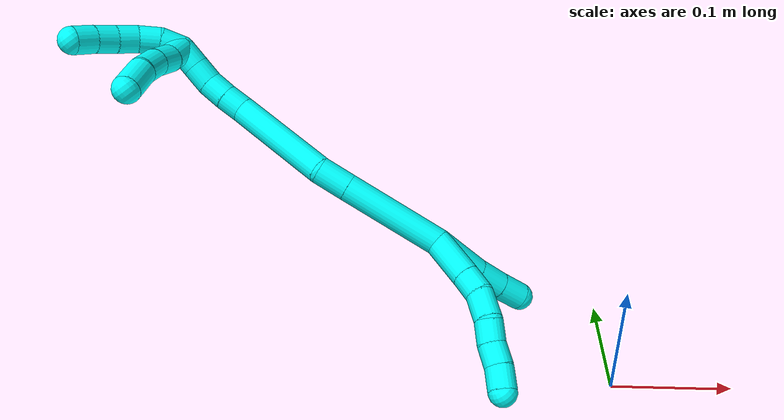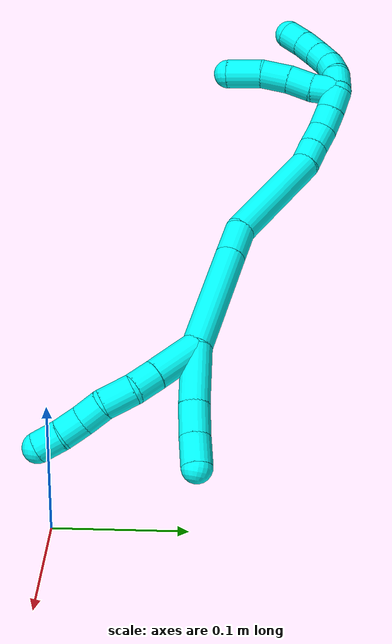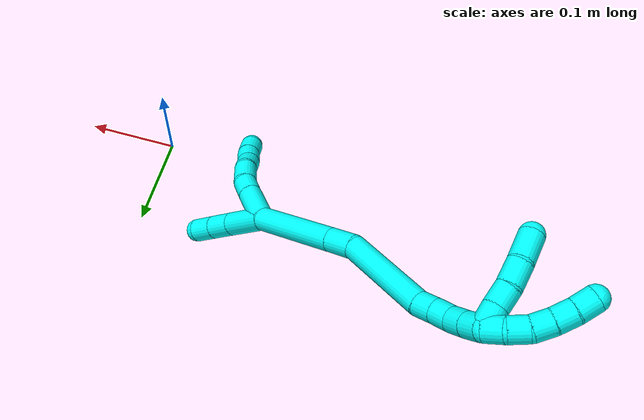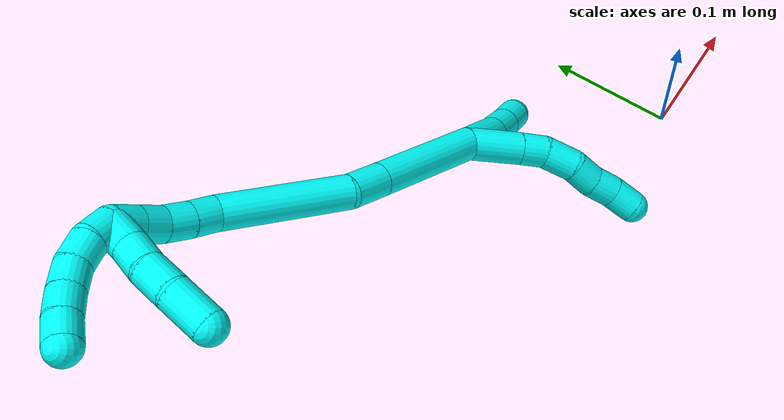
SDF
<sdf version="1.7">
 <world name="default">
  <model name="3">
   <static>0</static>
   <link name="3">
    <collision name="collision-cylinder-e_1_2_8">
     <pose>0.011711 -0.008985 -0.014736 2.59405 0.596169 1.66058</pose>
     <geometry><cylinder><radius>0.0125</radius><length>0.041714</length></cylinder></geometry>
     <surface>
      <friction><ode><mu>1.16</mu><mu2>1.16</mu2><slip1>0</slip1><slip2>0</slip2></ode></friction>
      <contact><ode><kp>1e+06</kp><kd>1</kd><max_vel>0</max_vel><min_depth>0.001</min_depth></ode></contact>
     </surface>
    </collision>
    <visual name="visual-cylinder-e_1_2_8">
     <pose>0.011711 -0.008985 -0.014736 2.59405 0.596169 1.66058</pose>
     <geometry><cylinder><radius>0.0125</radius><length>0.041714</length></cylinder></geometry>
     <material><ambient>0.003922 1 0.996078 1</ambient></material>
    </visual>
    <collision name="collision-cylinder-e_2_8_9">
     <pose>0.029112 -0.02276 -0.036716 2.55734 0.580047 1.56315</pose>
     <geometry><cylinder><radius>0.0125</radius><length>0.020766</length></cylinder></geometry>
     <surface>
      <friction><ode><mu>1.16</mu><mu2>1.16</mu2><slip1>0</slip1><slip2>0</slip2></ode></friction>
      <contact><ode><kp>1e+06</kp><kd>1</kd><max_vel>0</max_vel><min_depth>0.001</min_depth></ode></contact>
     </surface>
    </collision>
    <visual name="visual-cylinder-e_2_8_9">
     <pose>0.029112 -0.02276 -0.036716 2.55734 0.580047 1.56315</pose>
     <geometry><cylinder><radius>0.0125</radius><length>0.020766</length></cylinder></geometry>
     <material><ambient>0.003922 1 0.996078 1</ambient></material>
    </visual>
    <collision name="collision-cylinder-e_3_9_10">
     <pose>0.039591 -0.036652 -0.051874 2.28651 0.377941 0.794812</pose>
     <geometry><cylinder><radius>0.0125</radius><length>0.025954</length></cylinder></geometry>
     <surface>
      <friction><ode><mu>1.16</mu><mu2>1.16</mu2><slip1>0</slip1><slip2>0</slip2></ode></friction>
      <contact><ode><kp>1e+06</kp><kd>1</kd><max_vel>0</max_vel><min_depth>0.001</min_depth></ode></contact>
     </surface>
    </collision>
    <visual name="visual-cylinder-e_3_9_10">
     <pose>0.039591 -0.036652 -0.051874 2.28651 0.377941 0.794812</pose>
     <geometry><cylinder><radius>0.0125</radius><length>0.025954</length></cylinder></geometry>
     <material><ambient>0.003922 1 0.996078 1</ambient></material>
    </visual>
    <collision name="collision-cylinder-e_4_10_11">
     <pose>0.045266 -0.05301 -0.066868 2.34383 0.087246 0.206396</pose>
     <geometry><cylinder><radius>0.0125</radius><length>0.020354</length></cylinder></geometry>
     <surface>
      <friction><ode><mu>1.16</mu><mu2>1.16</mu2><slip1>0</slip1><slip2>0</slip2></ode></friction>
      <contact><ode><kp>1e+06</kp><kd>1</kd><max_vel>0</max_vel><min_depth>0.001</min_depth></ode></contact>
     </surface>
    </collision>
    <visual name="visual-cylinder-e_4_10_11">
     <pose>0.045266 -0.05301 -0.066868 2.34383 0.087246 0.206396</pose>
     <geometry><cylinder><radius>0.0125</radius><length>0.020354</length></cylinder></geometry>
     <material><ambient>0.003922 1 0.996078 1</ambient></material>
    </visual>
    <collision name="collision-cylinder-e_5_11_12">
     <pose>0.048983 -0.066849 -0.080954 2.38746 0.286256 0.698027</pose>
     <geometry><cylinder><radius>0.0125</radius><length>0.020042</length></cylinder></geometry>
     <surface>
      <friction><ode><mu>1.16</mu><mu2>1.16</mu2><slip1>0</slip1><slip2>0</slip2></ode></friction>
      <contact><ode><kp>1e+06</kp><kd>1</kd><max_vel>0</max_vel><min_depth>0.001</min_depth></ode></contact>
     </surface>
    </collision>
    <visual name="visual-cylinder-e_5_11_12">
     <pose>0.048983 -0.066849 -0.080954 2.38746 0.286256 0.698027</pose>
     <geometry><cylinder><radius>0.0125</radius><length>0.020042</length></cylinder></geometry>
     <material><ambient>0.003922 1 0.996078 1</ambient></material>
    </visual>
    <collision name="collision-cylinder-e_6_12_6">
     <pose>0.053922 -0.081636 -0.094306 2.22902 0.200609 0.404481</pose>
     <geometry><cylinder><radius>0.0125</radius><length>0.02117</length></cylinder></geometry>
     <surface>
      <friction><ode><mu>1.16</mu><mu2>1.16</mu2><slip1>0</slip1><slip2>0</slip2></ode></friction>
      <contact><ode><kp>1e+06</kp><kd>1</kd><max_vel>0</max_vel><min_depth>0.001</min_depth></ode></contact>
     </surface>
    </collision>
    <visual name="visual-cylinder-e_6_12_6">
     <pose>0.053922 -0.081636 -0.094306 2.22902 0.200609 0.404481</pose>
     <geometry><cylinder><radius>0.0125</radius><length>0.02117</length></cylinder></geometry>
     <material><ambient>0.003922 1 0.996078 1</ambient></material>
    </visual>
    <collision name="collision-cylinder-e_1_2_13">
     <pose>0.002763 0.005566 -0.023186 -2.90601 0.115353 -0.907884</pose>
     <geometry><cylinder><radius>0.0125</radius><length>0.048008</length></cylinder></geometry>
     <surface>
      <friction><ode><mu>1.16</mu><mu2>1.16</mu2><slip1>0</slip1><slip2>0</slip2></ode></friction>
      <contact><ode><kp>1e+06</kp><kd>1</kd><max_vel>0</max_vel><min_depth>0.001</min_depth></ode></contact>
     </surface>
    </collision>
    <visual name="visual-cylinder-e_1_2_13">
     <pose>0.002763 0.005566 -0.023186 -2.90601 0.115353 -0.907884</pose>
     <geometry><cylinder><radius>0.0125</radius><length>0.048008</length></cylinder></geometry>
     <material><ambient>0.003922 1 0.996078 1</ambient></material>
    </visual>
    <collision name="collision-cylinder-e_2_13_14">
     <pose>0.007578 0.015494 -0.059121 -2.81188 0.151123 -0.854102</pose>
     <geometry><cylinder><radius>0.0125</radius><length>0.02726</length></cylinder></geometry>
     <surface>
      <friction><ode><mu>1.16</mu><mu2>1.16</mu2><slip1>0</slip1><slip2>0</slip2></ode></friction>
      <contact><ode><kp>1e+06</kp><kd>1</kd><max_vel>0</max_vel><min_depth>0.001</min_depth></ode></contact>
     </surface>
    </collision>
    <visual name="visual-cylinder-e_2_13_14">
     <pose>0.007578 0.015494 -0.059121 -2.81188 0.151123 -0.854102</pose>
     <geometry><cylinder><radius>0.0125</radius><length>0.02726</length></cylinder></geometry>
     <material><ambient>0.003922 1 0.996078 1</ambient></material>
    </visual>
    <collision name="collision-cylinder-e_3_14_5">
     <pose>0.011671 0.024371 -0.0832 -2.76244 0.165828 -0.817437</pose>
     <geometry><cylinder><radius>0.0125</radius><length>0.024732</length></cylinder></geometry>
     <surface>
      <friction><ode><mu>1.16</mu><mu2>1.16</mu2><slip1>0</slip1><slip2>0</slip2></ode></friction>
      <contact><ode><kp>1e+06</kp><kd>1</kd><max_vel>0</max_vel><min_depth>0.001</min_depth></ode></contact>
     </surface>
    </collision>
    <visual name="visual-cylinder-e_3_14_5">
     <pose>0.011671 0.024371 -0.0832 -2.76244 0.165828 -0.817437</pose>
     <geometry><cylinder><radius>0.0125</radius><length>0.024732</length></cylinder></geometry>
     <material><ambient>0.003922 1 0.996078 1</ambient></material>
    </visual>
    <collision name="collision-cylinder-e_1_2_15">
     <pose>-0.020855 -0.005334 0.041815 0.12688 -0.459429 -0.029708</pose>
     <geometry><cylinder><radius>0.0125</radius><length>0.094061</length></cylinder></geometry>
     <surface>
      <friction><ode><mu>1.16</mu><mu2>1.16</mu2><slip1>0</slip1><slip2>0</slip2></ode></friction>
      <contact><ode><kp>1e+06</kp><kd>1</kd><max_vel>0</max_vel><min_depth>0.001</min_depth></ode></contact>
     </surface>
    </collision>
    <visual name="visual-cylinder-e_1_2_15">
     <pose>-0.020855 -0.005334 0.041815 0.12688 -0.459429 -0.029708</pose>
     <geometry><cylinder><radius>0.0125</radius><length>0.094061</length></cylinder></geometry>
     <material><ambient>0.003922 1 0.996078 1</ambient></material>
    </visual>
    <collision name="collision-cylinder-e_2_15_16">
     <pose>-0.048171 -0.012205 0.096625 0.11773 -0.458632 -0.027511</pose>
     <geometry><cylinder><radius>0.0125</radius><length>0.029188</length></cylinder></geometry>
     <surface>
      <friction><ode><mu>1.16</mu><mu2>1.16</mu2><slip1>0</slip1><slip2>0</slip2></ode></friction>
      <contact><ode><kp>1e+06</kp><kd>1</kd><max_vel>0</max_vel><min_depth>0.001</min_depth></ode></contact>
     </surface>
    </collision>
    <visual name="visual-cylinder-e_2_15_16">
     <pose>-0.048171 -0.012205 0.096625 0.11773 -0.458632 -0.027511</pose>
     <geometry><cylinder><radius>0.0125</radius><length>0.029188</length></cylinder></geometry>
     <material><ambient>0.003922 1 0.996078 1</ambient></material>
    </visual>
    <collision name="collision-cylinder-e_3_16_17">
     <pose>-0.083363 -0.005306 0.147575 -0.218724 -0.636383 0.072301</pose>
     <geometry><cylinder><radius>0.0125</radius><length>0.096687</length></cylinder></geometry>
     <surface>
      <friction><ode><mu>1.16</mu><mu2>1.16</mu2><slip1>0</slip1><slip2>0</slip2></ode></friction>
      <contact><ode><kp>1e+06</kp><kd>1</kd><max_vel>0</max_vel><min_depth>0.001</min_depth></ode></contact>
     </surface>
    </collision>
    <visual name="visual-cylinder-e_3_16_17">
     <pose>-0.083363 -0.005306 0.147575 -0.218724 -0.636383 0.072301</pose>
     <geometry><cylinder><radius>0.0125</radius><length>0.096687</length></cylinder></geometry>
     <material><ambient>0.003922 1 0.996078 1</ambient></material>
    </visual>
    <collision name="collision-cylinder-e_4_17_18">
     <pose>-0.116449 0.003156 0.194538 -0.002838 -0.450405 0.00065</pose>
     <geometry><cylinder><radius>0.0125</radius><length>0.020015</length></cylinder></geometry>
     <surface>
      <friction><ode><mu>1.16</mu><mu2>1.16</mu2><slip1>0</slip1><slip2>0</slip2></ode></friction>
      <contact><ode><kp>1e+06</kp><kd>1</kd><max_vel>0</max_vel><min_depth>0.001</min_depth></ode></contact>
     </surface>
    </collision>
    <visual name="visual-cylinder-e_4_17_18">
     <pose>-0.116449 0.003156 0.194538 -0.002838 -0.450405 0.00065</pose>
     <geometry><cylinder><radius>0.0125</radius><length>0.020015</length></cylinder></geometry>
     <material><ambient>0.003922 1 0.996078 1</ambient></material>
    </visual>
    <collision name="collision-cylinder-e_5_18_19">
     <pose>-0.124981 0.003827 0.212621 -0.071049 -0.430302 0.015533</pose>
     <geometry><cylinder><radius>0.0125</radius><length>0.020017</length></cylinder></geometry>
     <surface>
      <friction><ode><mu>1.16</mu><mu2>1.16</mu2><slip1>0</slip1><slip2>0</slip2></ode></friction>
      <contact><ode><kp>1e+06</kp><kd>1</kd><max_vel>0</max_vel><min_depth>0.001</min_depth></ode></contact>
     </surface>
    </collision>
    <visual name="visual-cylinder-e_5_18_19">
     <pose>-0.124981 0.003827 0.212621 -0.071049 -0.430302 0.015533</pose>
     <geometry><cylinder><radius>0.0125</radius><length>0.020017</length></cylinder></geometry>
     <material><ambient>0.003922 1 0.996078 1</ambient></material>
    </visual>
    <collision name="collision-cylinder-e_6_19_20">
     <pose>-0.131203 0.005587 0.231425 -0.114039 -0.206021 0.011802</pose>
     <geometry><cylinder><radius>0.0125</radius><length>0.020011</length></cylinder></geometry>
     <surface>
      <friction><ode><mu>1.16</mu><mu2>1.16</mu2><slip1>0</slip1><slip2>0</slip2></ode></friction>
      <contact><ode><kp>1e+06</kp><kd>1</kd><max_vel>0</max_vel><min_depth>0.001</min_depth></ode></contact>
     </surface>
    </collision>
    <visual name="visual-cylinder-e_6_19_20">
     <pose>-0.131203 0.005587 0.231425 -0.114039 -0.206021 0.011802</pose>
     <geometry><cylinder><radius>0.0125</radius><length>0.020011</length></cylinder></geometry>
     <material><ambient>0.003922 1 0.996078 1</ambient></material>
    </visual>
    <collision name="collision-cylinder-e_7_20_1">
     <pose>-0.134822 0.007482 0.25101 -0.078978 -0.1577 0.006244</pose>
     <geometry><cylinder><radius>0.0125</radius><length>0.02002</length></cylinder></geometry>
     <surface>
      <friction><ode><mu>1.16</mu><mu2>1.16</mu2><slip1>0</slip1><slip2>0</slip2></ode></friction>
      <contact><ode><kp>1e+06</kp><kd>1</kd><max_vel>0</max_vel><min_depth>0.001</min_depth></ode></contact>
     </surface>
    </collision>
    <visual name="visual-cylinder-e_7_20_1">
     <pose>-0.134822 0.007482 0.25101 -0.078978 -0.1577 0.006244</pose>
     <geometry><cylinder><radius>0.0125</radius><length>0.02002</length></cylinder></geometry>
     <material><ambient>0.003922 1 0.996078 1</ambient></material>
    </visual>
    <collision name="collision-cylinder-e_1_1_21">
     <pose>-0.139933 0.004355 0.269362 0.430958 -0.361762 -0.080014</pose>
     <geometry><cylinder><radius>0.0125</radius><length>0.02</length></cylinder></geometry>
     <surface>
      <friction><ode><mu>1.16</mu><mu2>1.16</mu2><slip1>0</slip1><slip2>0</slip2></ode></friction>
      <contact><ode><kp>1e+06</kp><kd>1</kd><max_vel>0</max_vel><min_depth>0.001</min_depth></ode></contact>
     </surface>
    </collision>
    <visual name="visual-cylinder-e_1_1_21">
     <pose>-0.139933 0.004355 0.269362 0.430958 -0.361762 -0.080014</pose>
     <geometry><cylinder><radius>0.0125</radius><length>0.02</length></cylinder></geometry>
     <material><ambient>0.003922 1 0.996078 1</ambient></material>
    </visual>
    <collision name="collision-cylinder-e_2_21_22">
     <pose>-0.147629 -0.005866 0.284407 0.767257 -0.428722 -0.175293</pose>
     <geometry><cylinder><radius>0.0125</radius><length>0.02</length></cylinder></geometry>
     <surface>
      <friction><ode><mu>1.16</mu><mu2>1.16</mu2><slip1>0</slip1><slip2>0</slip2></ode></friction>
      <contact><ode><kp>1e+06</kp><kd>1</kd><max_vel>0</max_vel><min_depth>0.001</min_depth></ode></contact>
     </surface>
    </collision>
    <visual name="visual-cylinder-e_2_21_22">
     <pose>-0.147629 -0.005866 0.284407 0.767257 -0.428722 -0.175293</pose>
     <geometry><cylinder><radius>0.0125</radius><length>0.02</length></cylinder></geometry>
     <material><ambient>0.003922 1 0.996078 1</ambient></material>
    </visual>
    <collision name="collision-cylinder-e_3_22_23">
     <pose>-0.153757 -0.02023 0.296548 0.963554 -0.198401 -0.103986</pose>
     <geometry><cylinder><radius>0.0125</radius><length>0.02</length></cylinder></geometry>
     <surface>
      <friction><ode><mu>1.16</mu><mu2>1.16</mu2><slip1>0</slip1><slip2>0</slip2></ode></friction>
      <contact><ode><kp>1e+06</kp><kd>1</kd><max_vel>0</max_vel><min_depth>0.001</min_depth></ode></contact>
     </surface>
    </collision>
    <visual name="visual-cylinder-e_3_22_23">
     <pose>-0.153757 -0.02023 0.296548 0.963554 -0.198401 -0.103986</pose>
     <geometry><cylinder><radius>0.0125</radius><length>0.02</length></cylinder></geometry>
     <material><ambient>0.003922 1 0.996078 1</ambient></material>
    </visual>
    <collision name="collision-cylinder-e_4_23_24">
     <pose>-0.156496 -0.03664 0.307577 0.994246 -0.07684 -0.041706</pose>
     <geometry><cylinder><radius>0.0125</radius><length>0.02</length></cylinder></geometry>
     <surface>
      <friction><ode><mu>1.16</mu><mu2>1.16</mu2><slip1>0</slip1><slip2>0</slip2></ode></friction>
      <contact><ode><kp>1e+06</kp><kd>1</kd><max_vel>0</max_vel><min_depth>0.001</min_depth></ode></contact>
     </surface>
    </collision>
    <visual name="visual-cylinder-e_4_23_24">
     <pose>-0.156496 -0.03664 0.307577 0.994246 -0.07684 -0.041706</pose>
     <geometry><cylinder><radius>0.0125</radius><length>0.02</length></cylinder></geometry>
     <material><ambient>0.003922 1 0.996078 1</ambient></material>
    </visual>
    <collision name="collision-cylinder-e_5_24_4">
     <pose>-0.157247 -0.053836 0.317693 1.0837 0.001609 0.000969</pose>
     <geometry><cylinder><radius>0.0125</radius><length>0.02</length></cylinder></geometry>
     <surface>
      <friction><ode><mu>1.16</mu><mu2>1.16</mu2><slip1>0</slip1><slip2>0</slip2></ode></friction>
      <contact><ode><kp>1e+06</kp><kd>1</kd><max_vel>0</max_vel><min_depth>0.001</min_depth></ode></contact>
     </surface>
    </collision>
    <visual name="visual-cylinder-e_5_24_4">
     <pose>-0.157247 -0.053836 0.317693 1.0837 0.001609 0.000969</pose>
     <geometry><cylinder><radius>0.0125</radius><length>0.02</length></cylinder></geometry>
     <material><ambient>0.003922 1 0.996078 1</ambient></material>
    </visual>
    <collision name="collision-cylinder-e_1_1_25">
     <pose>-0.133203 -0.002288 0.261145 1.54428 0.293617 0.286038</pose>
     <geometry><cylinder><radius>0.0125</radius><length>0.022051</length></cylinder></geometry>
     <surface>
      <friction><ode><mu>1.16</mu><mu2>1.16</mu2><slip1>0</slip1><slip2>0</slip2></ode></friction>
      <contact><ode><kp>1e+06</kp><kd>1</kd><max_vel>0</max_vel><min_depth>0.001</min_depth></ode></contact>
     </surface>
    </collision>
    <visual name="visual-cylinder-e_1_1_25">
     <pose>-0.133203 -0.002288 0.261145 1.54428 0.293617 0.286038</pose>
     <geometry><cylinder><radius>0.0125</radius><length>0.022051</length></cylinder></geometry>
     <material><ambient>0.003922 1 0.996078 1</ambient></material>
    </visual>
    <collision name="collision-cylinder-e_2_25_26">
     <pose>-0.126168 -0.023004 0.263877 1.3341 0.352249 0.278474</pose>
     <geometry><cylinder><radius>0.0125</radius><length>0.022283</length></cylinder></geometry>
     <surface>
      <friction><ode><mu>1.16</mu><mu2>1.16</mu2><slip1>0</slip1><slip2>0</slip2></ode></friction>
      <contact><ode><kp>1e+06</kp><kd>1</kd><max_vel>0</max_vel><min_depth>0.001</min_depth></ode></contact>
     </surface>
    </collision>
    <visual name="visual-cylinder-e_2_25_26">
     <pose>-0.126168 -0.023004 0.263877 1.3341 0.352249 0.278474</pose>
     <geometry><cylinder><radius>0.0125</radius><length>0.022283</length></cylinder></geometry>
     <material><ambient>0.003922 1 0.996078 1</ambient></material>
    </visual>
    <collision name="collision-cylinder-e_3_26_27">
     <pose>-0.11744 -0.044501 0.267119 1.50118 0.406101 0.379443</pose>
     <geometry><cylinder><radius>0.0125</radius><length>0.024729</length></cylinder></geometry>
     <surface>
      <friction><ode><mu>1.16</mu><mu2>1.16</mu2><slip1>0</slip1><slip2>0</slip2></ode></friction>
      <contact><ode><kp>1e+06</kp><kd>1</kd><max_vel>0</max_vel><min_depth>0.001</min_depth></ode></contact>
     </surface>
    </collision>
    <visual name="visual-cylinder-e_3_26_27">
     <pose>-0.11744 -0.044501 0.267119 1.50118 0.406101 0.379443</pose>
     <geometry><cylinder><radius>0.0125</radius><length>0.024729</length></cylinder></geometry>
     <material><ambient>0.003922 1 0.996078 1</ambient></material>
    </visual>
    <collision name="collision-cylinder-e_4_27_3">
     <pose>-0.107721 -0.070407 0.266048 1.69783 0.317872 0.360179</pose>
     <geometry><cylinder><radius>0.0125</radius><length>0.030938</length></cylinder></geometry>
     <surface>
      <friction><ode><mu>1.16</mu><mu2>1.16</mu2><slip1>0</slip1><slip2>0</slip2></ode></friction>
      <contact><ode><kp>1e+06</kp><kd>1</kd><max_vel>0</max_vel><min_depth>0.001</min_depth></ode></contact>
     </surface>
    </collision>
    <visual name="visual-cylinder-e_4_27_3">
     <pose>-0.107721 -0.070407 0.266048 1.69783 0.317872 0.360179</pose>
     <geometry><cylinder><radius>0.0125</radius><length>0.030938</length></cylinder></geometry>
     <material><ambient>0.003922 1 0.996078 1</ambient></material>
    </visual>
    <collision name="collision-sphere-3">
     <pose>-0.102886 -0.084983 0.264186 0 -0 0</pose>
     <geometry><sphere><radius>0.0125</radius></sphere></geometry>
     <surface>
      <friction><ode><mu>1.16</mu><mu2>1.16</mu2><slip1>0</slip1><slip2>0</slip2></ode></friction>
      <contact><ode><kp>1e+06</kp><kd>1</kd><max_vel>0</max_vel><min_depth>0.001</min_depth></ode></contact>
     </surface>
    </collision>
    <visual name="visual-sphere-3">
     <pose>-0.102886 -0.084983 0.264186 0 -0 0</pose>
     <geometry><sphere><radius>0.0125</radius></sphere></geometry>
     <material><ambient>0.003922 1 0.996078 1</ambient></material>
    </visual>
    <collision name="collision-sphere-27">
     <pose>-0.112555 -0.055832 0.267909 0 -0 0</pose>
     <geometry><sphere><radius>0.0125</radius></sphere></geometry>
     <surface>
      <friction><ode><mu>1.16</mu><mu2>1.16</mu2><slip1>0</slip1><slip2>0</slip2></ode></friction>
      <contact><ode><kp>1e+06</kp><kd>1</kd><max_vel>0</max_vel><min_depth>0.001</min_depth></ode></contact>
     </surface>
    </collision>
    <visual name="visual-sphere-27">
     <pose>-0.112555 -0.055832 0.267909 0 -0 0</pose>
     <geometry><sphere><radius>0.0125</radius></sphere></geometry>
     <material><ambient>0.003922 1 0.996078 1</ambient></material>
    </visual>
    <collision name="collision-sphere-26">
     <pose>-0.122324 -0.033169 0.266329 0 -0 0</pose>
     <geometry><sphere><radius>0.0125</radius></sphere></geometry>
     <surface>
      <friction><ode><mu>1.16</mu><mu2>1.16</mu2><slip1>0</slip1><slip2>0</slip2></ode></friction>
      <contact><ode><kp>1e+06</kp><kd>1</kd><max_vel>0</max_vel><min_depth>0.001</min_depth></ode></contact>
     </surface>
    </collision>
    <visual name="visual-sphere-26">
     <pose>-0.122324 -0.033169 0.266329 0 -0 0</pose>
     <geometry><sphere><radius>0.0125</radius></sphere></geometry>
     <material><ambient>0.003922 1 0.996078 1</ambient></material>
    </visual>
    <collision name="collision-sphere-25">
     <pose>-0.130012 -0.012838 0.261425 0 -0 0</pose>
     <geometry><sphere><radius>0.0125</radius></sphere></geometry>
     <surface>
      <friction><ode><mu>1.16</mu><mu2>1.16</mu2><slip1>0</slip1><slip2>0</slip2></ode></friction>
      <contact><ode><kp>1e+06</kp><kd>1</kd><max_vel>0</max_vel><min_depth>0.001</min_depth></ode></contact>
     </surface>
    </collision>
    <visual name="visual-sphere-25">
     <pose>-0.130012 -0.012838 0.261425 0 -0 0</pose>
     <geometry><sphere><radius>0.0125</radius></sphere></geometry>
     <material><ambient>0.003922 1 0.996078 1</ambient></material>
    </visual>
    <collision name="collision-sphere-4">
     <pose>-0.157231 -0.062673 0.322373 0 -0 0</pose>
     <geometry><sphere><radius>0.0125</radius></sphere></geometry>
     <surface>
      <friction><ode><mu>1.16</mu><mu2>1.16</mu2><slip1>0</slip1><slip2>0</slip2></ode></friction>
      <contact><ode><kp>1e+06</kp><kd>1</kd><max_vel>0</max_vel><min_depth>0.001</min_depth></ode></contact>
     </surface>
    </collision>
    <visual name="visual-sphere-4">
     <pose>-0.157231 -0.062673 0.322373 0 -0 0</pose>
     <geometry><sphere><radius>0.0125</radius></sphere></geometry>
     <material><ambient>0.003922 1 0.996078 1</ambient></material>
    </visual>
    <collision name="collision-sphere-24">
     <pose>-0.157263 -0.044999 0.313012 0 -0 0</pose>
     <geometry><sphere><radius>0.0125</radius></sphere></geometry>
     <surface>
      <friction><ode><mu>1.16</mu><mu2>1.16</mu2><slip1>0</slip1><slip2>0</slip2></ode></friction>
      <contact><ode><kp>1e+06</kp><kd>1</kd><max_vel>0</max_vel><min_depth>0.001</min_depth></ode></contact>
     </surface>
    </collision>
    <visual name="visual-sphere-24">
     <pose>-0.157263 -0.044999 0.313012 0 -0 0</pose>
     <geometry><sphere><radius>0.0125</radius></sphere></geometry>
     <material><ambient>0.003922 1 0.996078 1</ambient></material>
    </visual>
    <collision name="collision-sphere-23">
     <pose>-0.155728 -0.028281 0.302142 0 -0 0</pose>
     <geometry><sphere><radius>0.0125</radius></sphere></geometry>
     <surface>
      <friction><ode><mu>1.16</mu><mu2>1.16</mu2><slip1>0</slip1><slip2>0</slip2></ode></friction>
      <contact><ode><kp>1e+06</kp><kd>1</kd><max_vel>0</max_vel><min_depth>0.001</min_depth></ode></contact>
     </surface>
    </collision>
    <visual name="visual-sphere-23">
     <pose>-0.155728 -0.028281 0.302142 0 -0 0</pose>
     <geometry><sphere><radius>0.0125</radius></sphere></geometry>
     <material><ambient>0.003922 1 0.996078 1</ambient></material>
    </visual>
    <collision name="collision-sphere-22">
     <pose>-0.151786 -0.012179 0.290953 0 -0 0</pose>
     <geometry><sphere><radius>0.0125</radius></sphere></geometry>
     <surface>
      <friction><ode><mu>1.16</mu><mu2>1.16</mu2><slip1>0</slip1><slip2>0</slip2></ode></friction>
      <contact><ode><kp>1e+06</kp><kd>1</kd><max_vel>0</max_vel><min_depth>0.001</min_depth></ode></contact>
     </surface>
    </collision>
    <visual name="visual-sphere-22">
     <pose>-0.151786 -0.012179 0.290953 0 -0 0</pose>
     <geometry><sphere><radius>0.0125</radius></sphere></geometry>
     <material><ambient>0.003922 1 0.996078 1</ambient></material>
    </visual>
    <collision name="collision-sphere-21">
     <pose>-0.143472 0.000448 0.27786 0 -0 0</pose>
     <geometry><sphere><radius>0.0125</radius></sphere></geometry>
     <surface>
      <friction><ode><mu>1.16</mu><mu2>1.16</mu2><slip1>0</slip1><slip2>0</slip2></ode></friction>
      <contact><ode><kp>1e+06</kp><kd>1</kd><max_vel>0</max_vel><min_depth>0.001</min_depth></ode></contact>
     </surface>
    </collision>
    <visual name="visual-sphere-21">
     <pose>-0.143472 0.000448 0.27786 0 -0 0</pose>
     <geometry><sphere><radius>0.0125</radius></sphere></geometry>
     <material><ambient>0.003922 1 0.996078 1</ambient></material>
    </visual>
    <collision name="collision-sphere-1">
     <pose>-0.136394 0.008262 0.260865 0 -0 0</pose>
     <geometry><sphere><radius>0.0125</radius></sphere></geometry>
     <surface>
      <friction><ode><mu>1.16</mu><mu2>1.16</mu2><slip1>0</slip1><slip2>0</slip2></ode></friction>
      <contact><ode><kp>1e+06</kp><kd>1</kd><max_vel>0</max_vel><min_depth>0.001</min_depth></ode></contact>
     </surface>
    </collision>
    <visual name="visual-sphere-1">
     <pose>-0.136394 0.008262 0.260865 0 -0 0</pose>
     <geometry><sphere><radius>0.0125</radius></sphere></geometry>
     <material><ambient>0.003922 1 0.996078 1</ambient></material>
    </visual>
    <collision name="collision-sphere-12">
     <pose>0.051812 -0.07343 -0.087961 0 -0 0</pose>
     <geometry><sphere><radius>0.0125</radius></sphere></geometry>
     <surface>
      <friction><ode><mu>1.16</mu><mu2>1.16</mu2><slip1>0</slip1><slip2>0</slip2></ode></friction>
      <contact><ode><kp>1e+06</kp><kd>1</kd><max_vel>0</max_vel><min_depth>0.001</min_depth></ode></contact>
     </surface>
    </collision>
    <visual name="visual-sphere-12">
     <pose>0.051812 -0.07343 -0.087961 0 -0 0</pose>
     <geometry><sphere><radius>0.0125</radius></sphere></geometry>
     <material><ambient>0.003922 1 0.996078 1</ambient></material>
    </visual>
    <collision name="collision-sphere-11">
     <pose>0.046153 -0.060267 -0.073947 0 -0 0</pose>
     <geometry><sphere><radius>0.0125</radius></sphere></geometry>
     <surface>
      <friction><ode><mu>1.16</mu><mu2>1.16</mu2><slip1>0</slip1><slip2>0</slip2></ode></friction>
      <contact><ode><kp>1e+06</kp><kd>1</kd><max_vel>0</max_vel><min_depth>0.001</min_depth></ode></contact>
     </surface>
    </collision>
    <visual name="visual-sphere-11">
     <pose>0.046153 -0.060267 -0.073947 0 -0 0</pose>
     <geometry><sphere><radius>0.0125</radius></sphere></geometry>
     <material><ambient>0.003922 1 0.996078 1</ambient></material>
    </visual>
    <collision name="collision-sphere-10">
     <pose>0.04438 -0.045753 -0.059788 0 -0 0</pose>
     <geometry><sphere><radius>0.0125</radius></sphere></geometry>
     <surface>
      <friction><ode><mu>1.16</mu><mu2>1.16</mu2><slip1>0</slip1><slip2>0</slip2></ode></friction>
      <contact><ode><kp>1e+06</kp><kd>1</kd><max_vel>0</max_vel><min_depth>0.001</min_depth></ode></contact>
     </surface>
    </collision>
    <visual name="visual-sphere-10">
     <pose>0.04438 -0.045753 -0.059788 0 -0 0</pose>
     <geometry><sphere><radius>0.0125</radius></sphere></geometry>
     <material><ambient>0.003922 1 0.996078 1</ambient></material>
    </visual>
    <collision name="collision-sphere-9">
     <pose>0.034803 -0.02755 -0.04396 0 -0 0</pose>
     <geometry><sphere><radius>0.0125</radius></sphere></geometry>
     <surface>
      <friction><ode><mu>1.16</mu><mu2>1.16</mu2><slip1>0</slip1><slip2>0</slip2></ode></friction>
      <contact><ode><kp>1e+06</kp><kd>1</kd><max_vel>0</max_vel><min_depth>0.001</min_depth></ode></contact>
     </surface>
    </collision>
    <visual name="visual-sphere-9">
     <pose>0.034803 -0.02755 -0.04396 0 -0 0</pose>
     <geometry><sphere><radius>0.0125</radius></sphere></geometry>
     <material><ambient>0.003922 1 0.996078 1</ambient></material>
    </visual>
    <collision name="collision-sphere-2">
     <geometry><sphere><radius>0.0125</radius></sphere></geometry>
     <surface>
      <friction><ode><mu>1.16</mu><mu2>1.16</mu2><slip1>0</slip1><slip2>0</slip2></ode></friction>
      <contact><ode><kp>1e+06</kp><kd>1</kd><max_vel>0</max_vel><min_depth>0.001</min_depth></ode></contact>
     </surface>
    </collision>
    <visual name="visual-sphere-2">
     <geometry><sphere><radius>0.0125</radius></sphere></geometry>
     <material><ambient>0.003922 1 0.996078 1</ambient></material>
    </visual>
    <collision name="collision-sphere-19">
     <pose>-0.129156 0.004473 0.221694 0 -0 0</pose>
     <geometry><sphere><radius>0.0125</radius></sphere></geometry>
     <surface>
      <friction><ode><mu>1.16</mu><mu2>1.16</mu2><slip1>0</slip1><slip2>0</slip2></ode></friction>
      <contact><ode><kp>1e+06</kp><kd>1</kd><max_vel>0</max_vel><min_depth>0.001</min_depth></ode></contact>
     </surface>
    </collision>
    <visual name="visual-sphere-19">
     <pose>-0.129156 0.004473 0.221694 0 -0 0</pose>
     <geometry><sphere><radius>0.0125</radius></sphere></geometry>
     <material><ambient>0.003922 1 0.996078 1</ambient></material>
    </visual>
    <collision name="collision-sphere-8">
     <pose>0.023421 -0.01797 -0.029472 0 -0 0</pose>
     <geometry><sphere><radius>0.0125</radius></sphere></geometry>
     <surface>
      <friction><ode><mu>1.16</mu><mu2>1.16</mu2><slip1>0</slip1><slip2>0</slip2></ode></friction>
      <contact><ode><kp>1e+06</kp><kd>1</kd><max_vel>0</max_vel><min_depth>0.001</min_depth></ode></contact>
     </surface>
    </collision>
    <visual name="visual-sphere-8">
     <pose>0.023421 -0.01797 -0.029472 0 -0 0</pose>
     <geometry><sphere><radius>0.0125</radius></sphere></geometry>
     <material><ambient>0.003922 1 0.996078 1</ambient></material>
    </visual>
    <collision name="collision-sphere-6">
     <pose>0.056031 -0.089842 -0.100651 0 -0 0</pose>
     <geometry><sphere><radius>0.0125</radius></sphere></geometry>
     <surface>
      <friction><ode><mu>1.16</mu><mu2>1.16</mu2><slip1>0</slip1><slip2>0</slip2></ode></friction>
      <contact><ode><kp>1e+06</kp><kd>1</kd><max_vel>0</max_vel><min_depth>0.001</min_depth></ode></contact>
     </surface>
    </collision>
    <visual name="visual-sphere-6">
     <pose>0.056031 -0.089842 -0.100651 0 -0 0</pose>
     <geometry><sphere><radius>0.0125</radius></sphere></geometry>
     <material><ambient>0.003922 1 0.996078 1</ambient></material>
    </visual>
    <collision name="collision-sphere-13">
     <pose>0.005526 0.011131 -0.046372 0 -0 0</pose>
     <geometry><sphere><radius>0.0125</radius></sphere></geometry>
     <surface>
      <friction><ode><mu>1.16</mu><mu2>1.16</mu2><slip1>0</slip1><slip2>0</slip2></ode></friction>
      <contact><ode><kp>1e+06</kp><kd>1</kd><max_vel>0</max_vel><min_depth>0.001</min_depth></ode></contact>
     </surface>
    </collision>
    <visual name="visual-sphere-13">
     <pose>0.005526 0.011131 -0.046372 0 -0 0</pose>
     <geometry><sphere><radius>0.0125</radius></sphere></geometry>
     <material><ambient>0.003922 1 0.996078 1</ambient></material>
    </visual>
    <collision name="collision-sphere-14">
     <pose>0.00963 0.019856 -0.071869 0 -0 0</pose>
     <geometry><sphere><radius>0.0125</radius></sphere></geometry>
     <surface>
      <friction><ode><mu>1.16</mu><mu2>1.16</mu2><slip1>0</slip1><slip2>0</slip2></ode></friction>
      <contact><ode><kp>1e+06</kp><kd>1</kd><max_vel>0</max_vel><min_depth>0.001</min_depth></ode></contact>
     </surface>
    </collision>
    <visual name="visual-sphere-14">
     <pose>0.00963 0.019856 -0.071869 0 -0 0</pose>
     <geometry><sphere><radius>0.0125</radius></sphere></geometry>
     <material><ambient>0.003922 1 0.996078 1</ambient></material>
    </visual>
    <collision name="collision-sphere-5">
     <pose>0.013712 0.028885 -0.09453 0 -0 0</pose>
     <geometry><sphere><radius>0.0125</radius></sphere></geometry>
     <surface>
      <friction><ode><mu>1.16</mu><mu2>1.16</mu2><slip1>0</slip1><slip2>0</slip2></ode></friction>
      <contact><ode><kp>1e+06</kp><kd>1</kd><max_vel>0</max_vel><min_depth>0.001</min_depth></ode></contact>
     </surface>
    </collision>
    <visual name="visual-sphere-5">
     <pose>0.013712 0.028885 -0.09453 0 -0 0</pose>
     <geometry><sphere><radius>0.0125</radius></sphere></geometry>
     <material><ambient>0.003922 1 0.996078 1</ambient></material>
    </visual>
    <collision name="collision-sphere-15">
     <pose>-0.04171 -0.010668 0.08363 0 -0 0</pose>
     <geometry><sphere><radius>0.0125</radius></sphere></geometry>
     <surface>
      <friction><ode><mu>1.16</mu><mu2>1.16</mu2><slip1>0</slip1><slip2>0</slip2></ode></friction>
      <contact><ode><kp>1e+06</kp><kd>1</kd><max_vel>0</max_vel><min_depth>0.001</min_depth></ode></contact>
     </surface>
    </collision>
    <visual name="visual-sphere-15">
     <pose>-0.04171 -0.010668 0.08363 0 -0 0</pose>
     <geometry><sphere><radius>0.0125</radius></sphere></geometry>
     <material><ambient>0.003922 1 0.996078 1</ambient></material>
    </visual>
    <collision name="collision-sphere-16">
     <pose>-0.054633 -0.013742 0.109621 0 -0 0</pose>
     <geometry><sphere><radius>0.0125</radius></sphere></geometry>
     <surface>
      <friction><ode><mu>1.16</mu><mu2>1.16</mu2><slip1>0</slip1><slip2>0</slip2></ode></friction>
      <contact><ode><kp>1e+06</kp><kd>1</kd><max_vel>0</max_vel><min_depth>0.001</min_depth></ode></contact>
     </surface>
    </collision>
    <visual name="visual-sphere-16">
     <pose>-0.054633 -0.013742 0.109621 0 -0 0</pose>
     <geometry><sphere><radius>0.0125</radius></sphere></geometry>
     <material><ambient>0.003922 1 0.996078 1</ambient></material>
    </visual>
    <collision name="collision-sphere-17">
     <pose>-0.112092 0.00313 0.185529 0 -0 0</pose>
     <geometry><sphere><radius>0.0125</radius></sphere></geometry>
     <surface>
      <friction><ode><mu>1.16</mu><mu2>1.16</mu2><slip1>0</slip1><slip2>0</slip2></ode></friction>
      <contact><ode><kp>1e+06</kp><kd>1</kd><max_vel>0</max_vel><min_depth>0.001</min_depth></ode></contact>
     </surface>
    </collision>
    <visual name="visual-sphere-17">
     <pose>-0.112092 0.00313 0.185529 0 -0 0</pose>
     <geometry><sphere><radius>0.0125</radius></sphere></geometry>
     <material><ambient>0.003922 1 0.996078 1</ambient></material>
    </visual>
    <collision name="collision-sphere-18">
     <pose>-0.120806 0.003181 0.203548 0 -0 0</pose>
     <geometry><sphere><radius>0.0125</radius></sphere></geometry>
     <surface>
      <friction><ode><mu>1.16</mu><mu2>1.16</mu2><slip1>0</slip1><slip2>0</slip2></ode></friction>
      <contact><ode><kp>1e+06</kp><kd>1</kd><max_vel>0</max_vel><min_depth>0.001</min_depth></ode></contact>
     </surface>
    </collision>
    <visual name="visual-sphere-18">
     <pose>-0.120806 0.003181 0.203548 0 -0 0</pose>
     <geometry><sphere><radius>0.0125</radius></sphere></geometry>
     <material><ambient>0.003922 1 0.996078 1</ambient></material>
    </visual>
    <collision name="collision-sphere-20">
     <pose>-0.13325 0.006702 0.241155 0 -0 0</pose>
     <geometry><sphere><radius>0.0125</radius></sphere></geometry>
     <surface>
      <friction><ode><mu>1.16</mu><mu2>1.16</mu2><slip1>0</slip1><slip2>0</slip2></ode></friction>
      <contact><ode><kp>1e+06</kp><kd>1</kd><max_vel>0</max_vel><min_depth>0.001</min_depth></ode></contact>
     </surface>
    </collision>
    <visual name="visual-sphere-20">
     <pose>-0.13325 0.006702 0.241155 0 -0 0</pose>
     <geometry><sphere><radius>0.0125</radius></sphere></geometry>
     <material><ambient>0.003922 1 0.996078 1</ambient></material>
    </visual>
    <inertial>
     <pose>-0.057171 -0.015612 0.109772 0 -0 0</pose>
     <mass>0.75</mass>
     <inertia>
      <ixx>0.000167</ixx>
      <ixy>0</ixy>
      <ixz>0</ixz>
      <iyy>0.000143</iyy>
      <iyz>0</iyz>
      <izz>9.5e-05</izz>
     </inertia>
    </inertial>
   </link>
   <pose>-0.147015 0.099036 0.074839 0.194667 -0.61391 -0.60326</pose>
  </model>
 </world>
</sdf>
